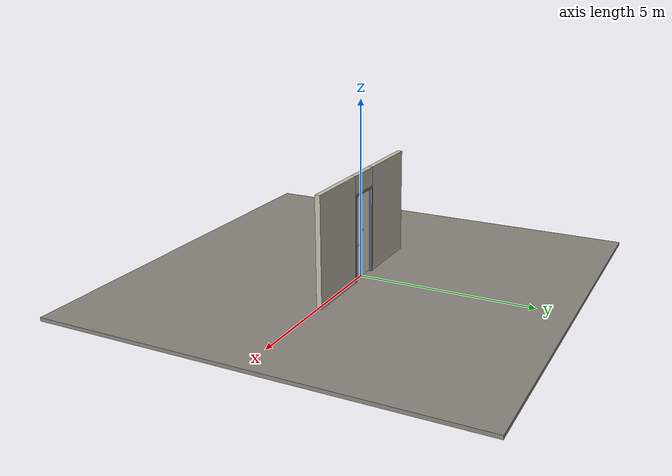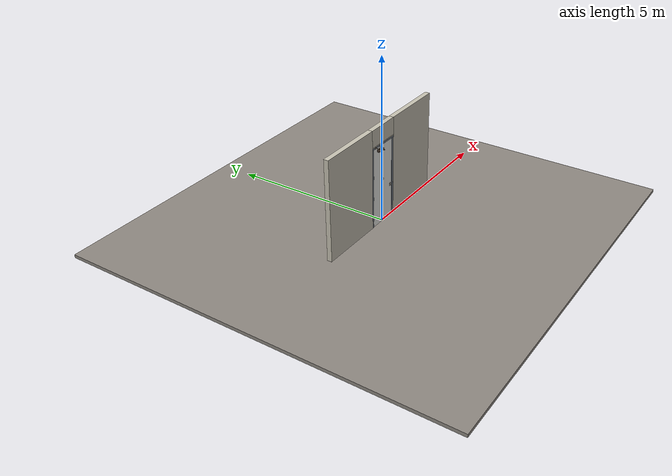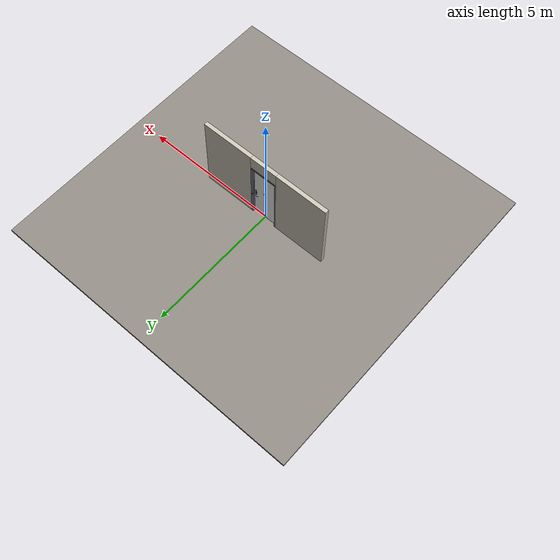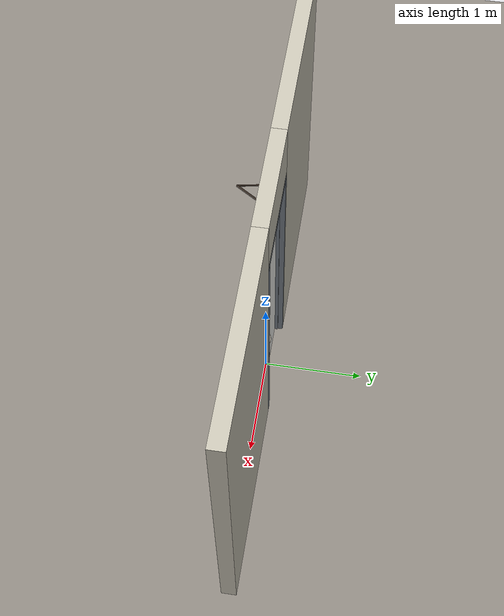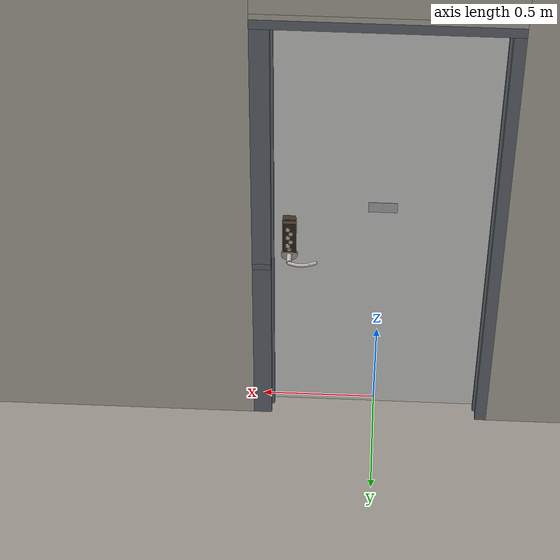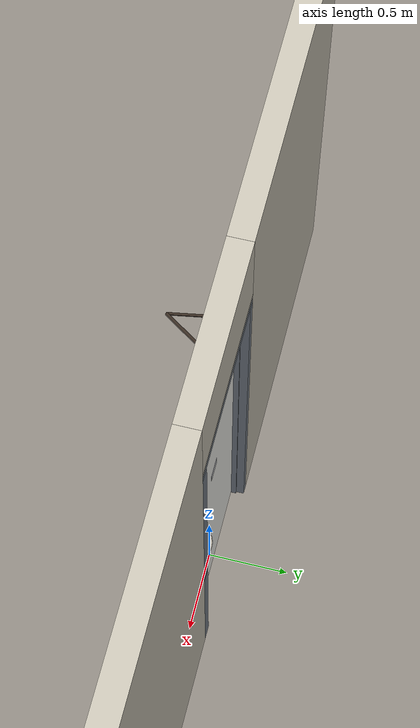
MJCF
<?xml version="1.0" ?>
<mujoco model="db0056_swing_single_full">
  <compiler angle="radian" meshdir="../../hardware" texturedir="../../textures" autolimits="true" inertiafromgeom="false"/>
  <option timestep="0.002" integrator="implicitfast" cone="elliptic" impratio="10" noslip_iterations="3">
    <flag multiccd="enable"/>
  </option>
  <size memory="16M"/>
  <default>
    <geom condim="4" solref="0.005 1" solimp="0.95 0.99 0.001"/>
    <joint solreflimit="0.005 1" solimplimit="0.95 0.99 0.001"/>
    <tendon solreflimit="0.005 1"/>
    <equality solref="0.002 1"/>
  </default>
  <visual>
    <headlight ambient="0.4 0.4 0.4" diffuse="0.7 0.7 0.7" specular="0.2 0.2 0.2"/>
    <quality shadowsize="4096"/>
    <map znear="0.01" zfar="60"/>
  </visual>
  <asset>
    <mesh name="closer_body_b226fdb10b" file="closer_body_b226fdb10b.obj"/>
    <mesh name="hinge_dcb8da44bf" file="hinge_dcb8da44bf.obj"/>
    <mesh name="hinge_jamb_8e208d7310" file="hinge_jamb_8e208d7310.obj"/>
    <mesh name="keypad_body_91eb8ded3e" file="keypad_body_91eb8ded3e.obj"/>
    <mesh name="lever_a61139b160" file="lever_a61139b160.obj"/>
    <material name="mat_floor" rgba="0.55 0.53 0.5 1" specular="0.2" shininess="0.15" reflectance="0"/>
    <material name="mat_wall" rgba="0.78 0.76 0.7 1" specular="0.2" shininess="0.1" reflectance="0"/>
    <material name="mat_leaf" rgba="0.93 0.93 0.91 1" specular="0.2" shininess="0.57" reflectance="0"/>
    <material name="mat_hinge" rgba="0.65 0.66 0.68 1" specular="0.74" shininess="0.5" reflectance="0.36"/>
    <material name="mat_op_nickel_satin" rgba="0.72 0.7 0.66 1" specular="0.8" shininess="0.65" reflectance="0.4"/>
    <material name="mat_trim" rgba="0.85 0.66 0.3 1" specular="0.8" shininess="0.75" reflectance="0.4"/>
    <material name="mat_keypad" rgba="0.22 0.17 0.13 1" specular="0.8" shininess="0.6" reflectance="0.4"/>
    <material name="mat_key" rgba="0.85 0.85 0.82 1" specular="0.2" shininess="0.5" reflectance="0"/>
    <material name="mat_bolt" rgba="0.85 0.66 0.3 1" specular="0.8" shininess="0.75" reflectance="0.4"/>
    <material name="mat_frame" rgba="0.45 0.48 0.52 1" specular="0.32" shininess="0.6" reflectance="0.08"/>
    <material name="mat_closer" rgba="0.22 0.17 0.13 1" specular="0.8" shininess="0.6" reflectance="0.4"/>
    <material name="mat_sign" rgba="0.75 0.76 0.77 1" specular="0.8" shininess="0.65" reflectance="0.4"/>
    <texture name="skybox" type="skybox" builtin="gradient" rgb1="0.6 0.7 0.85" rgb2="0.9 0.92 0.95" width="256" height="256"/>
  </asset>
  <worldbody>
    <light name="sun" pos="1.5 -2.5 4" dir="-0.3 0.5 -0.8" directional="true" diffuse="0.8 0.8 0.8" specular="0.3 0.3 0.3" castshadow="true"/>
    <light name="fill" pos="-1.5 2.5 3" dir="0.3 -0.5 -0.7" directional="true" diffuse="0.35 0.35 0.4" castshadow="false"/>
    <camera name="robot_view" pos="0 -2.885813 2.043887" xyaxes="1 0 0 0 0.26963 0.962964" fovy="52"/>
    <camera name="far_view" pos="0 2.959812 2.043887" xyaxes="-1 0 0 0 -0.26963 0.962964" fovy="52"/>
    <camera name="iso" pos="2.221337 -2.418163 2.511538" xyaxes="0.741536 0.670913 0 -0.242917 0.268487 0.932151" fovy="46"/>
    <camera name="detail_handle" pos="0.4764 -0.8835 1.32" xyaxes="0.97561 0.219512 0 -0.070934 0.315262 0.94635" fovy="38"/>
    <geom name="floor" type="box" size="6 6 0.05" pos="0 0 -0.05" material="mat_floor" group="0" contype="1" conaffinity="1" friction="0.8 0.005 0.0001" density="2400"/>
    <geom name="wall_left" type="box" size="0.9945 0.0725 1.5255" pos="-1.5055 0.037 1.5255" material="mat_wall" group="0" contype="1" conaffinity="1" friction="0.6 0.005 0.0001" density="800"/>
    <geom name="wall_right" type="box" size="0.9795 0.0725 1.5255" pos="1.5205 0.037 1.5255" material="mat_wall" group="0" contype="1" conaffinity="1" friction="0.6 0.005 0.0001" density="800"/>
    <geom name="wall_header" type="box" size="0.526 0.0725 0.26" pos="0.015 0.037 2.791" material="mat_wall" group="0" contype="1" conaffinity="1" friction="0.6 0.005 0.0001" density="800"/>
    <geom name="hinge_0_jamb" type="mesh" mesh="hinge_jamb_8e208d7310" pos="-0.458 -0.0355 0.259" material="mat_hinge" group="1" contype="0" conaffinity="0" density="7850"/>
    <geom name="hinge_1_jamb" type="mesh" mesh="hinge_jamb_8e208d7310" pos="-0.458 -0.0355 0.928333" material="mat_hinge" group="1" contype="0" conaffinity="0" density="7850"/>
    <geom name="hinge_2_jamb" type="mesh" mesh="hinge_jamb_8e208d7310" pos="-0.458 -0.0355 1.597667" material="mat_hinge" group="1" contype="0" conaffinity="0" density="7850"/>
    <geom name="hinge_3_jamb" type="mesh" mesh="hinge_jamb_8e208d7310" pos="-0.458 -0.0355 2.267" material="mat_hinge" group="1" contype="0" conaffinity="0" density="7850"/>
    <geom name="jamb_hinge" type="box" size="0.025 0.0725 1.2255" pos="-0.486 0.037 1.2255" material="mat_frame" group="0" contype="1" conaffinity="1" friction="0.6 0.005 0.0001" density="300"/>
    <geom name="strike_1040_wall_n" type="box" size="0.04 0.05 0.0183" pos="0.501 0.0595 1.04" material="mat_frame" group="0" contype="1" conaffinity="1" friction="0.6 0.005 0.0001" density="300"/>
    <geom name="strike_1040_wall_p" type="box" size="0.04 0.008 0.0183" pos="0.501 -0.0175 1.04" material="mat_frame" group="0" contype="1" conaffinity="1" friction="0.6 0.005 0.0001" density="300"/>
    <geom name="strike_1040_ramp" type="box" size="0.04 0.018028 0.0183" pos="0.504282 -0.018312 1.04" quat="0.957092 0 0 0.289784" material="mat_frame" group="0" contype="1" conaffinity="1" friction="0.12 0.005 0.0001" density="300"/>
    <geom name="strike_1040_back" type="box" size="0.0285 0.0095 0.0183" pos="0.5125 0 1.04" material="mat_frame" group="0" contype="1" conaffinity="1" friction="0.6 0.005 0.0001" density="300"/>
    <geom name="jamb_strike_0" type="box" size="0.04 0.0725 0.51085" pos="0.501 0.037 0.51085" material="mat_frame" group="0" contype="1" conaffinity="1" friction="0.6 0.005 0.0001" density="300"/>
    <geom name="jamb_strike_1" type="box" size="0.04 0.0725 0.69635" pos="0.501 0.037 1.75465" material="mat_frame" group="0" contype="1" conaffinity="1" friction="0.6 0.005 0.0001" density="300"/>
    <geom name="jamb_head" type="box" size="0.526 0.0725 0.025" pos="0.015 0.037 2.476" material="mat_frame" group="0" contype="1" conaffinity="1" friction="0.6 0.005 0.0001" density="300"/>
    <geom name="head_stud" type="box" size="0.526 0.0725 0.015" pos="0.015 0.037 2.516" material="mat_wall" group="0" contype="1" conaffinity="1" friction="0.6 0.005 0.0001" density="500"/>
    <geom name="stop_hinge" type="box" size="0.0055 0.016 1.2255" pos="-0.4555 0.045 1.2255" material="mat_frame" group="0" contype="1" conaffinity="1" friction="0.6 0.005 0.0001" density="300"/>
    <geom name="stop_strike" type="box" size="0.0055 0.016 1.2255" pos="0.4555 0.045 1.2255" material="mat_frame" group="0" contype="1" conaffinity="1" friction="0.6 0.005 0.0001" density="300"/>
    <geom name="stop_head" type="box" size="0.461 0.016 0.0055" pos="0 0.045 2.4455" material="mat_frame" group="0" contype="1" conaffinity="1" friction="0.6 0.005 0.0001" density="300"/>
    <geom name="closer_bracket" type="box" size="0.03 0.012 0.014" pos="-0.361 -0.0475 2.481" material="mat_closer" group="1" contype="0" conaffinity="0" density="2700"/>
    <site name="approach_point" pos="0 -1.5 0" quat="1 0 0 0" size="0.05" rgba="0.2 0.9 0.2 0.5" group="4"/>
    <site name="goal_point" pos="0 1.5 0" quat="1 0 0 0" size="0.05" rgba="0.2 0.9 0.2 0.5" group="4"/>
    <site name="door_plane_center" pos="0 0 1.2255" quat="1 0 0 0" size="0.02" rgba="0.2 0.9 0.2 0.5" group="4"/>
    <body name="leaf" pos="-0.461 0 0">
      <inertial pos="0.446755 -0.004814 1.309332" mass="108.713386" quat="-0.498817 0.488177 0.506977 0.505805" diaginertia="7.46071432 58.94182122 66.280518288"/>
      <joint name="leaf_hinge" type="hinge" axis="0 0 -1" pos="0.003 -0.0355 0" limited="true" range="0 1.570796" damping="10.307281" frictionloss="1.631653" stiffness="29.195383" springref="-2.330505" armature="0.02"/>
      <geom name="leaf_slab" type="box" size="0.457 0.0285 1.219" pos="0.46 0 1.228" material="mat_leaf" group="0" contype="1" conaffinity="1" friction="0.4 0.005 0.0001" density="1"/>
      <geom name="hinge_0" type="mesh" mesh="hinge_dcb8da44bf" pos="0.003 -0.0355 0.259" material="mat_hinge" group="1" contype="0" conaffinity="0" density="7850"/>
      <geom name="hinge_1" type="mesh" mesh="hinge_dcb8da44bf" pos="0.003 -0.0355 0.928333" material="mat_hinge" group="1" contype="0" conaffinity="0" density="7850"/>
      <geom name="hinge_2" type="mesh" mesh="hinge_dcb8da44bf" pos="0.003 -0.0355 1.597667" material="mat_hinge" group="1" contype="0" conaffinity="0" density="7850"/>
      <geom name="hinge_3" type="mesh" mesh="hinge_dcb8da44bf" pos="0.003 -0.0355 2.267" material="mat_hinge" group="1" contype="0" conaffinity="0" density="7850"/>
      <geom name="leaf_keypad_body" type="mesh" mesh="keypad_body_91eb8ded3e" pos="0.847 0.0285 1.18" quat="0 0 0.707107 0.707107" material="mat_keypad" group="0" contype="1" conaffinity="1" friction="0.6 0.005 0.0001" density="2000"/>
      <geom name="leaf_keypad_cylinder" type="cylinder" size="0.009 0.002" pos="0.847 0.0625 1.105" quat="0.707107 -0.707107 0 0" material="mat_trim" group="1" contype="0" conaffinity="0" density="7100"/>
      <geom name="leaf_latch_bolt_faceplate" type="box" size="0.0006 0.014 0.0283" pos="0.9164 0 1.04" material="mat_bolt" group="1" contype="0" conaffinity="0" density="8500"/>
      <geom name="closer_body" type="mesh" mesh="closer_body_b226fdb10b" pos="0.3 -0.0285 2.358" quat="0.707107 0.707107 0 0" material="mat_closer" group="1" contype="0" conaffinity="0" density="2000"/>
      <geom name="closer_body_col" type="box" size="0.12 0.04 0.03" pos="0.3 -0.0685 2.358" material="mat_closer" group="3" contype="1" conaffinity="1" rgba="0.8 0.3 0.3 0.25" friction="0.6 0.005 0.0001" density="2000"/>
      <geom name="closer_pinion_shaft" type="cylinder" size="0.008 0.0615" pos="0.3 -0.0705 2.4195" material="mat_closer" group="1" contype="0" conaffinity="0" density="2700"/>
      <geom name="sign_push" type="box" size="0.06 0.001 0.03" pos="0.46 0.0295 1.359" material="mat_sign" group="2" contype="0" conaffinity="0" density="7900"/>
      <geom name="sign_pull" type="box" size="0.06 0.001 0.03" pos="0.46 -0.0295 1.359" material="mat_sign" group="2" contype="0" conaffinity="0" density="7900"/>
      <site name="leaf_edge_mid" pos="0.917 0 1.219" quat="1 0 0 0" size="0.02" rgba="0.2 0.9 0.2 0.5" group="4"/>
      <body name="leaf_handle" pos="0.847 0 1.04">
        <inertial pos="-0.021594 -0.055068 0" mass="0.47481" quat="-0.344914 0 0 0.938634" diaginertia="0.000261688 0.000905506 0.00108345"/>
        <joint name="leaf_handle_hinge" type="hinge" axis="0 -1 0" limited="true" range="0 0.87" damping="0.208394" frictionloss="0.052" stiffness="1" springref="-0.35" armature="0.01"/>
        <geom name="leaf_handle_spindle" type="cylinder" size="0.006 0.0365" pos="0 0 0" quat="0.707107 -0.707107 0 0" material="mat_op_nickel_satin" group="1" contype="0" conaffinity="0" density="7850"/>
        <geom name="leaf_handle_lever_n" type="mesh" mesh="lever_a61139b160" pos="0 -0.0285 0" quat="0.707107 0.707107 0 0" material="mat_op_nickel_satin" group="1" contype="0" conaffinity="0" density="3000"/>
        <geom name="leaf_handle_lever_col_n" type="capsule" size="0.008 0.048" pos="-0.056 -0.0835 0" quat="0.707107 0 -0.707107 0" material="mat_op_nickel_satin" group="3" contype="1" conaffinity="1" rgba="0.8 0.3 0.3 0.25" friction="0.7 0.01 0.0001" density="3000"/>
        <geom name="leaf_handle_hub_col_n" type="cylinder" size="0.012 0.022" pos="0 -0.0585 0" quat="0.707107 -0.707107 0 0" material="mat_op_nickel_satin" group="3" contype="1" conaffinity="1" rgba="0.8 0.3 0.3 0.25" friction="0.6 0.005 0.0001" density="3000"/>
        <site name="leaf_handle_grip_n" pos="-0.0896 -0.0835 0" quat="1 0 0 0" size="0.012" rgba="0.2 0.9 0.2 0.5" group="4"/>
      </body>
      <body name="leaf_keypad_key_1" pos="0.853 0.0605 1.232">
        <inertial pos="0 0.002 0" mass="0.001221" quat="0 0 0.707107 -0.707107" diaginertia="0.000000026 0.000000026 0.000000049"/>
        <joint name="leaf_keypad_key_1_slide" type="slide" axis="0 -1 0" limited="true" range="0 0.004" damping="17.146" frictionloss="0.05" stiffness="1500" springref="-0.004" armature="0.1"/>
        <geom name="leaf_keypad_key_1_geom" type="cylinder" size="0.009 0.002" pos="0 0.002 0" quat="0.707107 -0.707107 0 0" material="mat_key" group="0" contype="1" conaffinity="1" friction="0.6 0.005 0.0001" density="1200"/>
        <site name="leaf_keypad_key_1_press" pos="0 0.006 0" quat="1 0 0 0" size="0.008" rgba="0.2 0.9 0.2 0.5" group="4"/>
      </body>
      <body name="leaf_keypad_key_2" pos="0.841 0.0605 1.206">
        <inertial pos="0 0.002 0" mass="0.001221" quat="0 0 0.707107 -0.707107" diaginertia="0.000000026 0.000000026 0.000000049"/>
        <joint name="leaf_keypad_key_2_slide" type="slide" axis="0 -1 0" limited="true" range="0 0.004" damping="17.146" frictionloss="0.05" stiffness="1500" springref="-0.004" armature="0.1"/>
        <geom name="leaf_keypad_key_2_geom" type="cylinder" size="0.009 0.002" pos="0 0.002 0" quat="0.707107 -0.707107 0 0" material="mat_key" group="0" contype="1" conaffinity="1" friction="0.6 0.005 0.0001" density="1200"/>
        <site name="leaf_keypad_key_2_press" pos="0 0.006 0" quat="1 0 0 0" size="0.008" rgba="0.2 0.9 0.2 0.5" group="4"/>
      </body>
      <body name="leaf_keypad_key_3" pos="0.853 0.0605 1.18">
        <inertial pos="0 0.002 0" mass="0.001221" quat="0 0 0.707107 -0.707107" diaginertia="0.000000026 0.000000026 0.000000049"/>
        <joint name="leaf_keypad_key_3_slide" type="slide" axis="0 -1 0" limited="true" range="0 0.004" damping="17.146" frictionloss="0.05" stiffness="1500" springref="-0.004" armature="0.1"/>
        <geom name="leaf_keypad_key_3_geom" type="cylinder" size="0.009 0.002" pos="0 0.002 0" quat="0.707107 -0.707107 0 0" material="mat_key" group="0" contype="1" conaffinity="1" friction="0.6 0.005 0.0001" density="1200"/>
        <site name="leaf_keypad_key_3_press" pos="0 0.006 0" quat="1 0 0 0" size="0.008" rgba="0.2 0.9 0.2 0.5" group="4"/>
      </body>
      <body name="leaf_keypad_key_4" pos="0.841 0.0605 1.154">
        <inertial pos="0 0.002 0" mass="0.001221" quat="0 0 0.707107 -0.707107" diaginertia="0.000000026 0.000000026 0.000000049"/>
        <joint name="leaf_keypad_key_4_slide" type="slide" axis="0 -1 0" limited="true" range="0 0.004" damping="17.146" frictionloss="0.05" stiffness="1500" springref="-0.004" armature="0.1"/>
        <geom name="leaf_keypad_key_4_geom" type="cylinder" size="0.009 0.002" pos="0 0.002 0" quat="0.707107 -0.707107 0 0" material="mat_key" group="0" contype="1" conaffinity="1" friction="0.6 0.005 0.0001" density="1200"/>
        <site name="leaf_keypad_key_4_press" pos="0 0.006 0" quat="1 0 0 0" size="0.008" rgba="0.2 0.9 0.2 0.5" group="4"/>
      </body>
      <body name="leaf_keypad_key_5" pos="0.853 0.0605 1.128">
        <inertial pos="0 0.002 0" mass="0.001221" quat="0 0 0.707107 -0.707107" diaginertia="0.000000026 0.000000026 0.000000049"/>
        <joint name="leaf_keypad_key_5_slide" type="slide" axis="0 -1 0" limited="true" range="0 0.004" damping="17.146" frictionloss="0.05" stiffness="1500" springref="-0.004" armature="0.1"/>
        <geom name="leaf_keypad_key_5_geom" type="cylinder" size="0.009 0.002" pos="0 0.002 0" quat="0.707107 -0.707107 0 0" material="mat_key" group="0" contype="1" conaffinity="1" friction="0.6 0.005 0.0001" density="1200"/>
        <site name="leaf_keypad_key_5_press" pos="0 0.006 0" quat="1 0 0 0" size="0.008" rgba="0.2 0.9 0.2 0.5" group="4"/>
      </body>
      <body name="leaf_handle_out" pos="0.847 0 1.04">
        <inertial pos="-0.025007 0.063773 0" mass="0.41" quat="0.235955 0 0 0.971764" diaginertia="0.000156759 0.000717302 0.000791484"/>
        <joint name="leaf_handle_out_hinge" type="hinge" axis="0 -1 0" limited="true" range="0 0.87" damping="0.208382" frictionloss="0.052" stiffness="1" springref="-0.35" armature="0.01"/>
        <geom name="leaf_handle_out_lever_p" type="mesh" mesh="lever_a61139b160" pos="0 0.0285 0" quat="-0.707107 0.707107 0 0" material="mat_op_nickel_satin" group="1" contype="0" conaffinity="0" density="3000"/>
        <geom name="leaf_handle_out_lever_col_p" type="capsule" size="0.008 0.048" pos="-0.056 0.0835 0" quat="0.707107 0 -0.707107 0" material="mat_op_nickel_satin" group="3" contype="1" conaffinity="1" rgba="0.8 0.3 0.3 0.25" friction="0.7 0.01 0.0001" density="3000"/>
        <geom name="leaf_handle_out_hub_col_p" type="cylinder" size="0.012 0.022" pos="0 0.0585 0" quat="0.707107 -0.707107 0 0" material="mat_op_nickel_satin" group="3" contype="1" conaffinity="1" rgba="0.8 0.3 0.3 0.25" friction="0.6 0.005 0.0001" density="3000"/>
        <site name="leaf_handle_out_grip_p" pos="-0.0896 0.0835 0" quat="1 0 0 0" size="0.012" rgba="0.2 0.9 0.2 0.5" group="4"/>
      </body>
      <body name="leaf_latch_bolt" pos="0.917 0 1.04">
        <inertial pos="-0.0055 0 0" mass="0.074627" quat="0.92388 -0.382683 0 0" diaginertia="0.000002271 0.000013255 0.000013255"/>
        <joint name="leaf_latch_bolt_slide" type="slide" axis="-1 0 0" limited="true" range="0 0.019" damping="2" frictionloss="0.3" stiffness="600" springref="-0.01" armature="0.1"/>
        <geom name="leaf_latch_bolt_capsule" type="capsule" size="0.008 0.0165" pos="-0.0055 0 0" quat="0.707107 0 0.707107 0" material="mat_bolt" group="0" contype="1" conaffinity="1" friction="0.2 0.005 0.0001" density="8500"/>
      </body>
      <body name="closer_arm_main" pos="0.3 -0.0705 2.481" quat="0.472212 0 0 -0.881485">
        <inertial pos="0.14 0 0" mass="0.12096" quat="1 0 0 0" diaginertia="0.000003588 0.00079128 0.000792852"/>
        <joint name="closer_pinion" type="hinge" axis="0 0 1" limited="false" damping="0.01" armature="0.002"/>
        <geom name="closer_arm_main_geom" type="box" size="0.14 0.008 0.005" pos="0.14 0 0" material="mat_closer" group="1" contype="0" conaffinity="0" density="2700"/>
        <body name="closer_arm_fore" pos="0.28 0 0" quat="-0.371222 0 0 0.928544">
          <inertial pos="0.128088 0 0" mass="0.076531" quat="1 0 0 0" diaginertia="0.000001771 0.000437665 0.000438201"/>
          <joint name="closer_elbow" type="hinge" axis="0 0 1" limited="false" damping="0.01" armature="0.002"/>
          <geom name="closer_arm_fore_geom" type="box" size="0.1125 0.007 0.004" pos="0.1125 0 0" material="mat_closer" group="1" contype="0" conaffinity="0" density="2700"/>
          <geom name="closer_fore_neck" type="box" size="0.0175 0.003 0.003" pos="0.2425 0 0" material="mat_closer" group="1" contype="0" conaffinity="0" density="2700"/>
          <geom name="closer_fore_pivot" type="cylinder" size="0.005 0.012" pos="0.26 0 0" material="mat_closer" group="1" contype="0" conaffinity="0" density="2700"/>
        </body>
      </body>
    </body>
  </worldbody>
  <tendon>
    <fixed name="leaf_latch_bolt_coupling" limited="true" range="0 10">
      <joint joint="leaf_latch_bolt_slide" coef="1"/>
      <joint joint="leaf_handle_hinge" coef="-0.023457"/>
      <joint joint="leaf_handle_out_hinge" coef="-0.023457"/>
    </fixed>
  </tendon>
  <equality>
    <connect name="closer_arm_connect" body1="closer_arm_fore" body2="world" anchor="0.26 0 0" active="true"/>
  </equality>
  <contact>
    <exclude body1="closer_arm_main" body2="leaf"/>
    <exclude body1="closer_arm_fore" body2="leaf"/>
    <exclude body1="closer_arm_main" body2="closer_arm_fore"/>
  </contact>
  <sensor>
    <jointpos name="leaf_hinge_pos" joint="leaf_hinge"/>
    <jointvel name="leaf_hinge_vel" joint="leaf_hinge"/>
    <jointpos name="leaf_handle_hinge_pos" joint="leaf_handle_hinge"/>
    <jointvel name="leaf_handle_hinge_vel" joint="leaf_handle_hinge"/>
    <jointpos name="leaf_keypad_key_1_slide_pos" joint="leaf_keypad_key_1_slide"/>
    <jointvel name="leaf_keypad_key_1_slide_vel" joint="leaf_keypad_key_1_slide"/>
    <jointpos name="leaf_keypad_key_2_slide_pos" joint="leaf_keypad_key_2_slide"/>
    <jointvel name="leaf_keypad_key_2_slide_vel" joint="leaf_keypad_key_2_slide"/>
    <jointpos name="leaf_keypad_key_3_slide_pos" joint="leaf_keypad_key_3_slide"/>
    <jointvel name="leaf_keypad_key_3_slide_vel" joint="leaf_keypad_key_3_slide"/>
    <jointpos name="leaf_keypad_key_4_slide_pos" joint="leaf_keypad_key_4_slide"/>
    <jointvel name="leaf_keypad_key_4_slide_vel" joint="leaf_keypad_key_4_slide"/>
    <jointpos name="leaf_keypad_key_5_slide_pos" joint="leaf_keypad_key_5_slide"/>
    <jointvel name="leaf_keypad_key_5_slide_vel" joint="leaf_keypad_key_5_slide"/>
    <jointpos name="leaf_handle_out_hinge_pos" joint="leaf_handle_out_hinge"/>
    <jointvel name="leaf_handle_out_hinge_vel" joint="leaf_handle_out_hinge"/>
    <jointpos name="leaf_latch_bolt_slide_pos" joint="leaf_latch_bolt_slide"/>
    <jointvel name="leaf_latch_bolt_slide_vel" joint="leaf_latch_bolt_slide"/>
  </sensor>
</mujoco>
